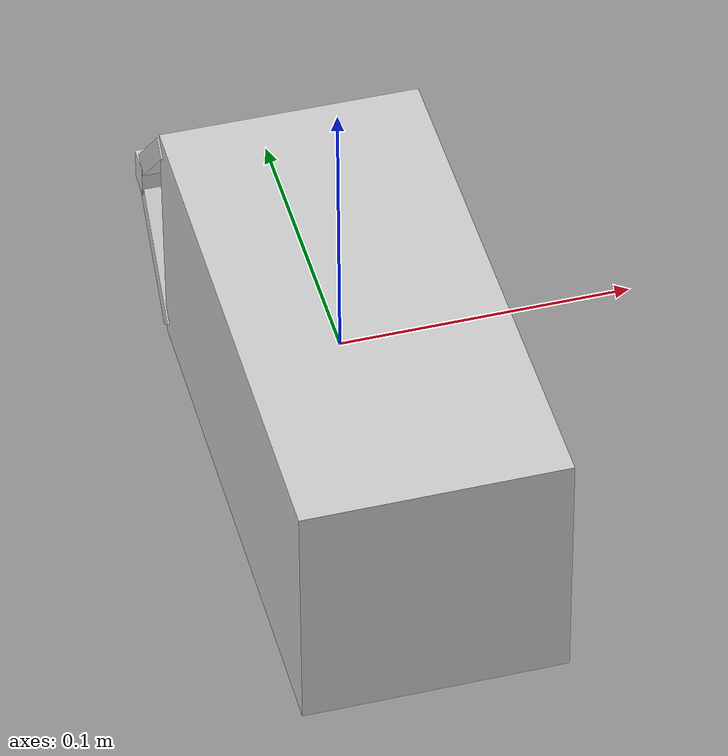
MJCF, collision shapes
<mujoco model="textured">
  <asset>
  <texture file="/home/lythk/safe-flow-matching/safelibero/libero/libero/assets/stable_hope_objects/milk/texture_map.png" name="tex-textured" type="2d" />
  <material name="textured" reflectance="0.5" texrepeat="1 1" texture="tex-textured" texuniform="false" />
  <mesh file="/home/lythk/safe-flow-matching/safelibero/libero/libero/assets/stable_hope_objects/milk/visual/textured_vis.msh" name="textured_vis" scale="0.01275 0.01275 0.01275" /></asset>
  <worldbody>
    <body>
      <body name="object">
      <geom solimp="0.998 0.998 0.001" solref="0.001 1" density="100" friction="0.95 0.3 0.1" type="mesh" mesh="textured_vis" conaffinity="0" contype="0" group="1" material="textured" /><geom solimp="0.998 0.998 0.001" solref="0.001 1" density="100" friction="0.95 0.3 0.1" type="box" pos="0.000629 -0.0255 0" quat="0.70711 0.70711 0.00000 -0.00000" size="0.044625 0.044625 0.093075" group="0" rgba="0.8 0.8 0.8 0.3" /><geom solimp="0.998 0.998 0.001" solref="0.001 1" density="100" friction="0.95 0.3 0.1" type="box" pos="8.5e-05 0.081328 0.022984" quat="0.28687 0.64630 -0.28687 -0.64630" size="0.003706 0.023477 0.044727" group="0" rgba="0.8 0.8 0.8 0.3" /><geom solimp="0.998 0.998 0.001" solref="0.001 1" density="100" friction="0.95 0.3 0.1" type="box" pos="8.5e-05 0.081328 -0.022848" quat="0.64203 0.29630 0.64203 0.29630" size="0.003706 0.023477 0.044727" group="0" rgba="0.8 0.8 0.8 0.3" /><geom solimp="0.998 0.998 0.001" solref="0.001 1" density="100" friction="0.95 0.3 0.1" type="box" pos="8.5e-05 0.099433 8.5e-05" quat="0.50000 0.50000 -0.50000 -0.50000" size="0.005015 0.005916 0.04505" group="0" rgba="0.8 0.8 0.8 0.3" /></body>
      <site rgba="0 0 0 0" size="0.0085" pos="0 0 -0.102" name="bottom_site" />
      <site rgba="0 0 0 0" size="0.0085" pos="0 0 0.068" name="top_site" />
      <site rgba="0 0 0 0" size="0.0085" pos="0.051 0.051 0" name="horizontal_radius_site" />
    </body>
  </worldbody>
</mujoco>
